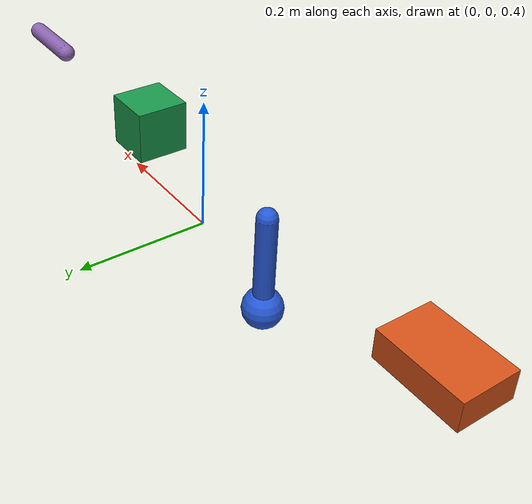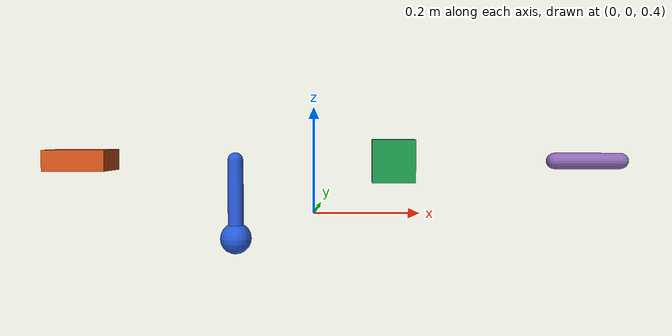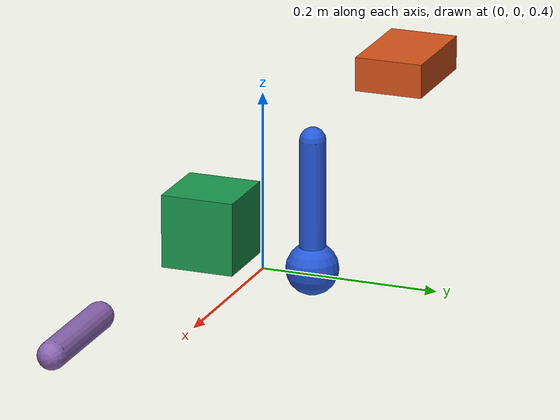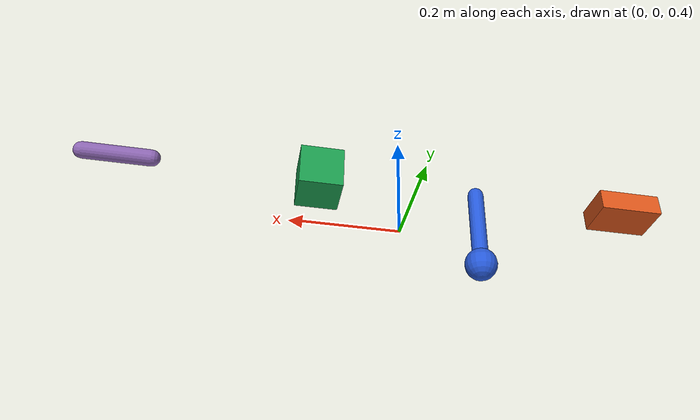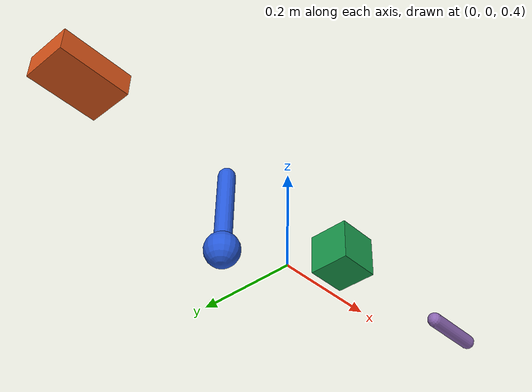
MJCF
<mujoco model="joint_zoo">
  <compiler angle="radian" autolimits="true"/>
  <option timestep="0.002" gravity="0 0 0"/>
  <default>
    <geom contype="0" conaffinity="0"/>
  </default>
  <worldbody>
    <light pos="0 -1 2" dir="0 0.5 -1"/>
    <body name="free_box" pos="-0.45 0 0.5">
      <freejoint name="free"/>
      <geom type="box" size="0.06 0.04 0.02" mass="1" rgba=".85 .33 .1 1"/>
    </body>
    <body name="ball_body" pos="-0.15 0 0.5">
      <joint name="ball" type="ball"/>
      <geom type="capsule" fromto="0 0 0 0 0 -0.15" size="0.015" mass="0.3" rgba=".15 .35 .85 1"/>
      <geom type="sphere" pos="0 0 -0.15" size="0.03" mass="0.3" rgba=".15 .35 .85 1"/>
    </body>
    <body name="slide_body" pos="0.15 0 0.5">
      <joint name="slide" type="slide" axis="0 0 1"/>
      <geom type="box" size="0.04 0.04 0.04" mass="1" rgba=".1 .6 .3 1"/>
    </body>
    <body name="hinge_body" pos="0.45 0 0.5">
      <joint name="hinge" type="hinge" axis="0 1 0"/>
      <geom type="capsule" fromto="0 0 0 0.12 0 0" size="0.015" mass="0.5" rgba=".55 .4 .7 1"/>
    </body>
  </worldbody>
</mujoco>
